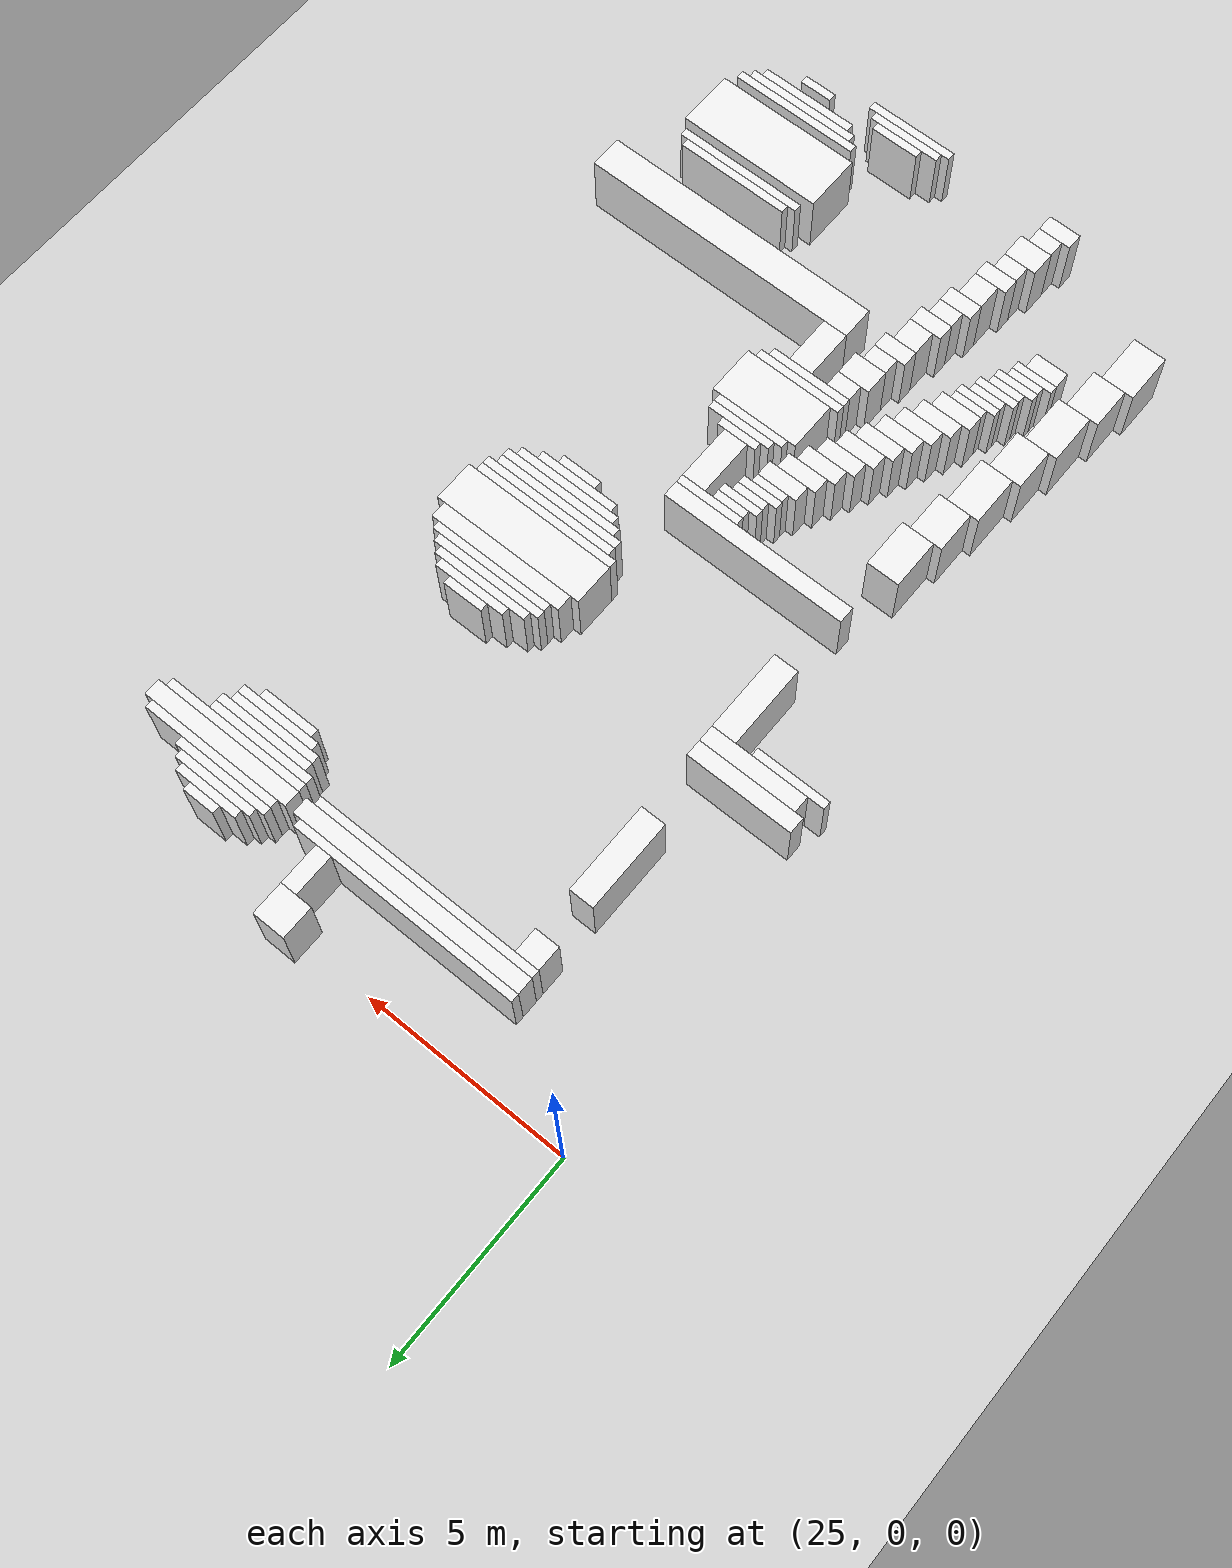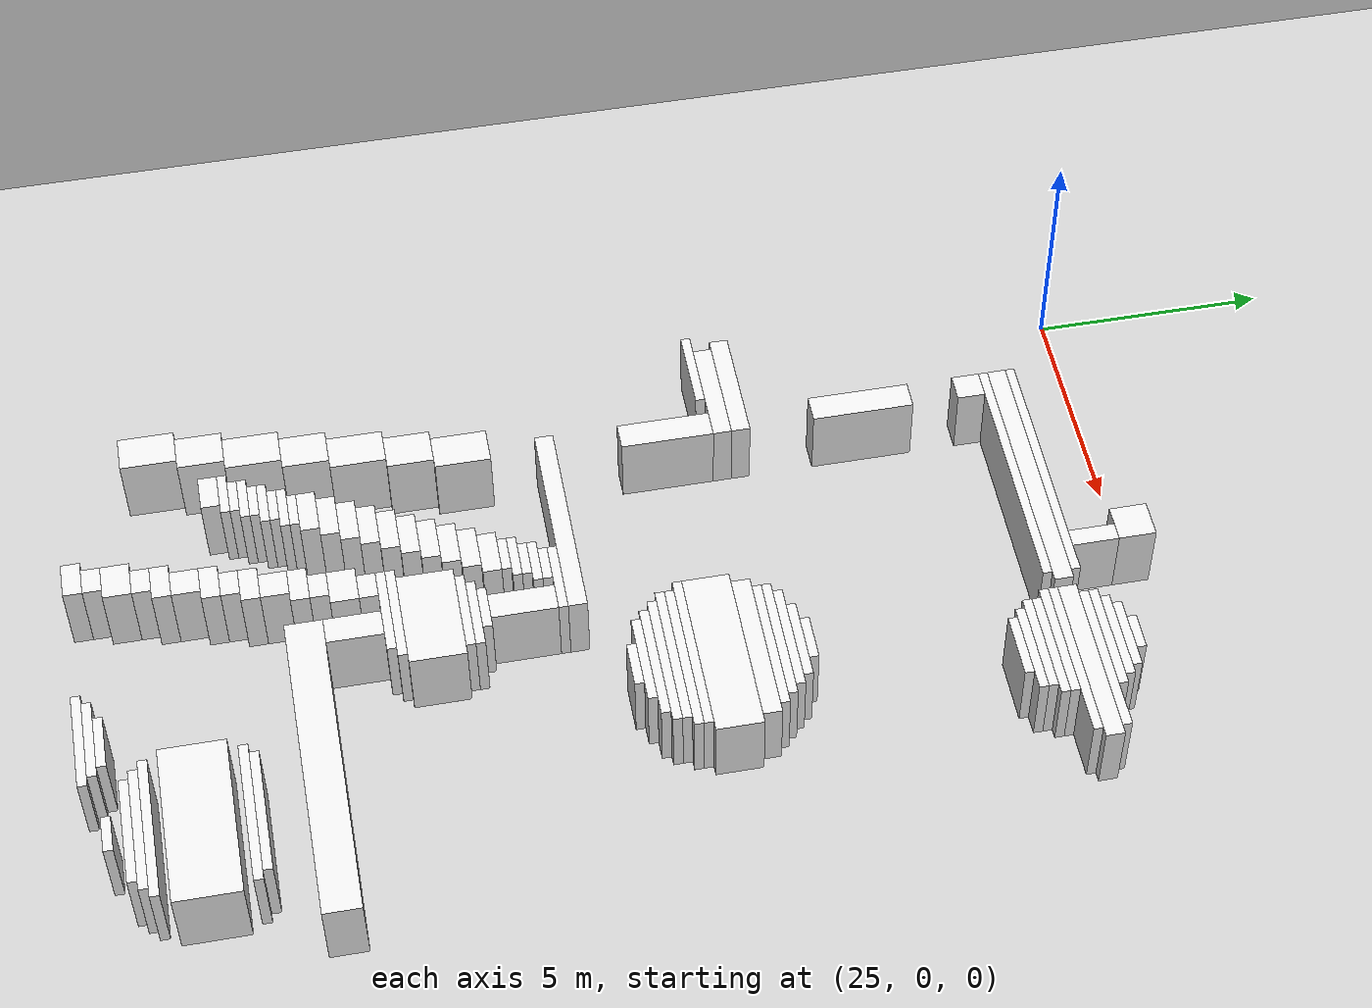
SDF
<sdf version="1.7">
 <world name="default">
  <model name="ground_plane">
   <static>1</static>
   <link name="link">
    <collision name="collision">
     <geometry><plane><normal>0 0 1</normal><size>120 120</size></plane></geometry>
    </collision>
    <visual name="visual">
     <geometry><plane><normal>0 0 1</normal><size>120 120</size></plane></geometry>
     <material>
      <script><uri>file://media/materials/scripts/gazebo.material</uri><name>Gazebo/Grey</name></script>
     </material>
    </visual>
   </link>
  </model>
  <model name="random_complex_03_model">
   <static>1</static>
   <link name="obs_1635">
    <pose>32.0000 0.0000 0.8000 0 0 0</pose>
    <collision name="obs_1635_col"><geometry><box><size>0.8000 0.8000 1.6000</size></box></geometry></collision>
    <visual name="obs_1635_vis">
     <geometry><box><size>0.8000 0.8000 1.6000</size></box></geometry>
     <material>
      <script><uri>file://media/materials/scripts/gazebo.material</uri><name>Gazebo/White</name></script>
     </material>
    </visual>
   </link>
   <link name="obs_1661">
    <pose>34.8000 -0.7000 0.8000 0 0 0</pose>
    <collision name="obs_1661_col"><geometry><box><size>0.8000 0.2000 1.6000</size></box></geometry></collision>
    <visual name="obs_1661_vis">
     <geometry><box><size>0.8000 0.2000 1.6000</size></box></geometry>
     <material>
      <script><uri>file://media/materials/scripts/gazebo.material</uri><name>Gazebo/White</name></script>
     </material>
    </visual>
   </link>
   <link name="obs_1671">
    <pose>34.8000 -0.9000 0.8000 0 0 0</pose>
    <collision name="obs_1671_col"><geometry><box><size>1.6000 0.2000 1.6000</size></box></geometry></collision>
    <visual name="obs_1671_vis">
     <geometry><box><size>1.6000 0.2000 1.6000</size></box></geometry>
     <material>
      <script><uri>file://media/materials/scripts/gazebo.material</uri><name>Gazebo/White</name></script>
     </material>
    </visual>
   </link>
   <link name="obs_1680">
    <pose>34.8000 -1.1000 0.8000 0 0 0</pose>
    <collision name="obs_1680_col"><geometry><box><size>2.0000 0.2000 1.6000</size></box></geometry></collision>
    <visual name="obs_1680_vis">
     <geometry><box><size>2.0000 0.2000 1.6000</size></box></geometry>
     <material>
      <script><uri>file://media/materials/scripts/gazebo.material</uri><name>Gazebo/White</name></script>
     </material>
    </visual>
   </link>
   <link name="obs_1682">
    <pose>32.2000 -0.9000 0.8000 0 0 0</pose>
    <collision name="obs_1682_col"><geometry><box><size>0.4000 1.0000 1.6000</size></box></geometry></collision>
    <visual name="obs_1682_vis">
     <geometry><box><size>0.4000 1.0000 1.6000</size></box></geometry>
     <material>
      <script><uri>file://media/materials/scripts/gazebo.material</uri><name>Gazebo/White</name></script>
     </material>
    </visual>
   </link>
   <link name="obs_1691">
    <pose>34.8000 -1.3000 0.8000 0 0 0</pose>
    <collision name="obs_1691_col"><geometry><box><size>2.4000 0.2000 1.6000</size></box></geometry></collision>
    <visual name="obs_1691_vis">
     <geometry><box><size>2.4000 0.2000 1.6000</size></box></geometry>
     <material>
      <script><uri>file://media/materials/scripts/gazebo.material</uri><name>Gazebo/White</name></script>
     </material>
    </visual>
   </link>
   <link name="obs_1702">
    <pose>30.2000 -1.5000 0.8000 0 0 0</pose>
    <collision name="obs_1702_col"><geometry><box><size>5.6000 0.2000 1.6000</size></box></geometry></collision>
    <visual name="obs_1702_vis">
     <geometry><box><size>5.6000 0.2000 1.6000</size></box></geometry>
     <material>
      <script><uri>file://media/materials/scripts/gazebo.material</uri><name>Gazebo/White</name></script>
     </material>
    </visual>
   </link>
   <link name="obs_1703">
    <pose>35.3000 -1.5000 0.8000 0 0 0</pose>
    <collision name="obs_1703_col"><geometry><box><size>3.4000 0.2000 1.6000</size></box></geometry></collision>
    <visual name="obs_1703_vis">
     <geometry><box><size>3.4000 0.2000 1.6000</size></box></geometry>
     <material>
      <script><uri>file://media/materials/scripts/gazebo.material</uri><name>Gazebo/White</name></script>
     </material>
    </visual>
   </link>
   <link name="obs_1713">
    <pose>30.3000 -1.8000 0.8000 0 0 0</pose>
    <collision name="obs_1713_col"><geometry><box><size>5.8000 0.4000 1.6000</size></box></geometry></collision>
    <visual name="obs_1713_vis">
     <geometry><box><size>5.8000 0.4000 1.6000</size></box></geometry>
     <material>
      <script><uri>file://media/materials/scripts/gazebo.material</uri><name>Gazebo/White</name></script>
     </material>
    </visual>
   </link>
   <link name="obs_1714">
    <pose>35.3000 -1.8000 0.8000 0 0 0</pose>
    <collision name="obs_1714_col"><geometry><box><size>3.8000 0.4000 1.6000</size></box></geometry></collision>
    <visual name="obs_1714_vis">
     <geometry><box><size>3.8000 0.4000 1.6000</size></box></geometry>
     <material>
      <script><uri>file://media/materials/scripts/gazebo.material</uri><name>Gazebo/White</name></script>
     </material>
    </visual>
   </link>
   <link name="obs_1728">
    <pose>30.2000 -2.1000 0.8000 0 0 0</pose>
    <collision name="obs_1728_col"><geometry><box><size>5.6000 0.2000 1.6000</size></box></geometry></collision>
    <visual name="obs_1728_vis">
     <geometry><box><size>5.6000 0.2000 1.6000</size></box></geometry>
     <material>
      <script><uri>file://media/materials/scripts/gazebo.material</uri><name>Gazebo/White</name></script>
     </material>
    </visual>
   </link>
   <link name="obs_1729">
    <pose>35.2000 -2.1000 0.8000 0 0 0</pose>
    <collision name="obs_1729_col"><geometry><box><size>3.6000 0.2000 1.6000</size></box></geometry></collision>
    <visual name="obs_1729_vis">
     <geometry><box><size>3.6000 0.2000 1.6000</size></box></geometry>
     <material>
      <script><uri>file://media/materials/scripts/gazebo.material</uri><name>Gazebo/White</name></script>
     </material>
    </visual>
   </link>
   <link name="obs_1738">
    <pose>34.7000 -2.3000 0.8000 0 0 0</pose>
    <collision name="obs_1738_col"><geometry><box><size>2.6000 0.2000 1.6000</size></box></geometry></collision>
    <visual name="obs_1738_vis">
     <geometry><box><size>2.6000 0.2000 1.6000</size></box></geometry>
     <material>
      <script><uri>file://media/materials/scripts/gazebo.material</uri><name>Gazebo/White</name></script>
     </material>
    </visual>
   </link>
   <link name="obs_1748">
    <pose>34.8000 -2.5000 0.8000 0 0 0</pose>
    <collision name="obs_1748_col"><geometry><box><size>2.4000 0.2000 1.6000</size></box></geometry></collision>
    <visual name="obs_1748_vis">
     <geometry><box><size>2.4000 0.2000 1.6000</size></box></geometry>
     <material>
      <script><uri>file://media/materials/scripts/gazebo.material</uri><name>Gazebo/White</name></script>
     </material>
    </visual>
   </link>
   <link name="obs_1750">
    <pose>27.7000 -2.5000 0.8000 0 0 0</pose>
    <collision name="obs_1750_col"><geometry><box><size>0.6000 0.6000 1.6000</size></box></geometry></collision>
    <visual name="obs_1750_vis">
     <geometry><box><size>0.6000 0.6000 1.6000</size></box></geometry>
     <material>
      <script><uri>file://media/materials/scripts/gazebo.material</uri><name>Gazebo/White</name></script>
     </material>
    </visual>
   </link>
   <link name="obs_1755">
    <pose>34.7000 -2.7000 0.8000 0 0 0</pose>
    <collision name="obs_1755_col"><geometry><box><size>2.2000 0.2000 1.6000</size></box></geometry></collision>
    <visual name="obs_1755_vis">
     <geometry><box><size>2.2000 0.2000 1.6000</size></box></geometry>
     <material>
      <script><uri>file://media/materials/scripts/gazebo.material</uri><name>Gazebo/White</name></script>
     </material>
    </visual>
   </link>
   <link name="obs_1762">
    <pose>34.8000 -2.9000 0.8000 0 0 0</pose>
    <collision name="obs_1762_col"><geometry><box><size>2.0000 0.2000 1.6000</size></box></geometry></collision>
    <visual name="obs_1762_vis">
     <geometry><box><size>2.0000 0.2000 1.6000</size></box></geometry>
     <material>
      <script><uri>file://media/materials/scripts/gazebo.material</uri><name>Gazebo/White</name></script>
     </material>
    </visual>
   </link>
   <link name="obs_1772">
    <pose>34.7000 -3.1000 0.8000 0 0 0</pose>
    <collision name="obs_1772_col"><geometry><box><size>1.4000 0.2000 1.6000</size></box></geometry></collision>
    <visual name="obs_1772_vis">
     <geometry><box><size>1.4000 0.2000 1.6000</size></box></geometry>
     <material>
      <script><uri>file://media/materials/scripts/gazebo.material</uri><name>Gazebo/White</name></script>
     </material>
    </visual>
   </link>
   <link name="obs_1829">
    <pose>27.7000 -4.9000 0.8000 0 0 0</pose>
    <collision name="obs_1829_col"><geometry><box><size>0.6000 2.2000 1.6000</size></box></geometry></collision>
    <visual name="obs_1829_vis">
     <geometry><box><size>0.6000 2.2000 1.6000</size></box></geometry>
     <material>
      <script><uri>file://media/materials/scripts/gazebo.material</uri><name>Gazebo/White</name></script>
     </material>
    </visual>
   </link>
   <link name="obs_1868">
    <pose>33.7000 -7.3000 0.8000 0 0 0</pose>
    <collision name="obs_1868_col"><geometry><box><size>1.0000 0.2000 1.6000</size></box></geometry></collision>
    <visual name="obs_1868_vis">
     <geometry><box><size>1.0000 0.2000 1.6000</size></box></geometry>
     <material>
      <script><uri>file://media/materials/scripts/gazebo.material</uri><name>Gazebo/White</name></script>
     </material>
    </visual>
   </link>
   <link name="obs_1875">
    <pose>33.7000 -7.5000 0.8000 0 0 0</pose>
    <collision name="obs_1875_col"><geometry><box><size>1.8000 0.2000 1.6000</size></box></geometry></collision>
    <visual name="obs_1875_vis">
     <geometry><box><size>1.8000 0.2000 1.6000</size></box></geometry>
     <material>
      <script><uri>file://media/materials/scripts/gazebo.material</uri><name>Gazebo/White</name></script>
     </material>
    </visual>
   </link>
   <link name="obs_1877">
    <pose>26.7000 -7.6000 0.8000 0 0 0</pose>
    <collision name="obs_1877_col"><geometry><box><size>2.6000 0.4000 1.6000</size></box></geometry></collision>
    <visual name="obs_1877_vis">
     <geometry><box><size>2.6000 0.4000 1.6000</size></box></geometry>
     <material>
      <script><uri>file://media/materials/scripts/gazebo.material</uri><name>Gazebo/White</name></script>
     </material>
    </visual>
   </link>
   <link name="obs_1882">
    <pose>33.6000 -7.7000 0.8000 0 0 0</pose>
    <collision name="obs_1882_col"><geometry><box><size>2.4000 0.2000 1.6000</size></box></geometry></collision>
    <visual name="obs_1882_vis">
     <geometry><box><size>2.4000 0.2000 1.6000</size></box></geometry>
     <material>
      <script><uri>file://media/materials/scripts/gazebo.material</uri><name>Gazebo/White</name></script>
     </material>
    </visual>
   </link>
   <link name="obs_1888">
    <pose>33.6000 -7.9000 0.8000 0 0 0</pose>
    <collision name="obs_1888_col"><geometry><box><size>2.8000 0.2000 1.6000</size></box></geometry></collision>
    <visual name="obs_1888_vis">
     <geometry><box><size>2.8000 0.2000 1.6000</size></box></geometry>
     <material>
      <script><uri>file://media/materials/scripts/gazebo.material</uri><name>Gazebo/White</name></script>
     </material>
    </visual>
   </link>
   <link name="obs_1892">
    <pose>26.8000 -8.0000 0.8000 0 0 0</pose>
    <collision name="obs_1892_col"><geometry><box><size>2.4000 0.4000 1.6000</size></box></geometry></collision>
    <visual name="obs_1892_vis">
     <geometry><box><size>2.4000 0.4000 1.6000</size></box></geometry>
     <material>
      <script><uri>file://media/materials/scripts/gazebo.material</uri><name>Gazebo/White</name></script>
     </material>
    </visual>
   </link>
   <link name="obs_1894">
    <pose>33.7000 -8.1000 0.8000 0 0 0</pose>
    <collision name="obs_1894_col"><geometry><box><size>3.0000 0.2000 1.6000</size></box></geometry></collision>
    <visual name="obs_1894_vis">
     <geometry><box><size>3.0000 0.2000 1.6000</size></box></geometry>
     <material>
      <script><uri>file://media/materials/scripts/gazebo.material</uri><name>Gazebo/White</name></script>
     </material>
    </visual>
   </link>
   <link name="obs_1900">
    <pose>26.1000 -8.3000 0.8000 0 0 0</pose>
    <collision name="obs_1900_col"><geometry><box><size>1.8000 0.2000 1.6000</size></box></geometry></collision>
    <visual name="obs_1900_vis">
     <geometry><box><size>1.8000 0.2000 1.6000</size></box></geometry>
     <material>
      <script><uri>file://media/materials/scripts/gazebo.material</uri><name>Gazebo/White</name></script>
     </material>
    </visual>
   </link>
   <link name="obs_1902">
    <pose>33.7000 -8.4000 0.8000 0 0 0</pose>
    <collision name="obs_1902_col"><geometry><box><size>3.4000 0.4000 1.6000</size></box></geometry></collision>
    <visual name="obs_1902_vis">
     <geometry><box><size>3.4000 0.4000 1.6000</size></box></geometry>
     <material>
      <script><uri>file://media/materials/scripts/gazebo.material</uri><name>Gazebo/White</name></script>
     </material>
    </visual>
   </link>
   <link name="obs_1937">
    <pose>33.7000 -9.1000 0.8000 0 0 0</pose>
    <collision name="obs_1937_col"><geometry><box><size>3.8000 1.0000 1.6000</size></box></geometry></collision>
    <visual name="obs_1937_vis">
     <geometry><box><size>3.8000 1.0000 1.6000</size></box></geometry>
     <material>
      <script><uri>file://media/materials/scripts/gazebo.material</uri><name>Gazebo/White</name></script>
     </material>
    </visual>
   </link>
   <link name="obs_1951">
    <pose>33.6000 -9.7000 0.8000 0 0 0</pose>
    <collision name="obs_1951_col"><geometry><box><size>3.6000 0.2000 1.6000</size></box></geometry></collision>
    <visual name="obs_1951_vis">
     <geometry><box><size>3.6000 0.2000 1.6000</size></box></geometry>
     <material>
      <script><uri>file://media/materials/scripts/gazebo.material</uri><name>Gazebo/White</name></script>
     </material>
    </visual>
   </link>
   <link name="obs_1959">
    <pose>33.7000 -9.9000 0.8000 0 0 0</pose>
    <collision name="obs_1959_col"><geometry><box><size>3.4000 0.2000 1.6000</size></box></geometry></collision>
    <visual name="obs_1959_vis">
     <geometry><box><size>3.4000 0.2000 1.6000</size></box></geometry>
     <material>
      <script><uri>file://media/materials/scripts/gazebo.material</uri><name>Gazebo/White</name></script>
     </material>
    </visual>
   </link>
   <link name="obs_1961">
    <pose>27.7000 -9.2000 0.8000 0 0 0</pose>
    <collision name="obs_1961_col"><geometry><box><size>0.6000 2.0000 1.6000</size></box></geometry></collision>
    <visual name="obs_1961_vis">
     <geometry><box><size>0.6000 2.0000 1.6000</size></box></geometry>
     <material>
      <script><uri>file://media/materials/scripts/gazebo.material</uri><name>Gazebo/White</name></script>
     </material>
    </visual>
   </link>
   <link name="obs_1970">
    <pose>33.6000 -10.1000 0.8000 0 0 0</pose>
    <collision name="obs_1970_col"><geometry><box><size>3.2000 0.2000 1.6000</size></box></geometry></collision>
    <visual name="obs_1970_vis">
     <geometry><box><size>3.2000 0.2000 1.6000</size></box></geometry>
     <material>
      <script><uri>file://media/materials/scripts/gazebo.material</uri><name>Gazebo/White</name></script>
     </material>
    </visual>
   </link>
   <link name="obs_1972">
    <pose>33.7000 -10.3000 0.8000 0 0 0</pose>
    <collision name="obs_1972_col"><geometry><box><size>3.0000 0.2000 1.6000</size></box></geometry></collision>
    <visual name="obs_1972_vis">
     <geometry><box><size>3.0000 0.2000 1.6000</size></box></geometry>
     <material>
      <script><uri>file://media/materials/scripts/gazebo.material</uri><name>Gazebo/White</name></script>
     </material>
    </visual>
   </link>
   <link name="obs_1975">
    <pose>33.7000 -10.5000 0.8000 0 0 0</pose>
    <collision name="obs_1975_col"><geometry><box><size>2.6000 0.2000 1.6000</size></box></geometry></collision>
    <visual name="obs_1975_vis">
     <geometry><box><size>2.6000 0.2000 1.6000</size></box></geometry>
     <material>
      <script><uri>file://media/materials/scripts/gazebo.material</uri><name>Gazebo/White</name></script>
     </material>
    </visual>
   </link>
   <link name="obs_1978">
    <pose>33.6000 -10.7000 0.8000 0 0 0</pose>
    <collision name="obs_1978_col"><geometry><box><size>2.0000 0.2000 1.6000</size></box></geometry></collision>
    <visual name="obs_1978_vis">
     <geometry><box><size>2.0000 0.2000 1.6000</size></box></geometry>
     <material>
      <script><uri>file://media/materials/scripts/gazebo.material</uri><name>Gazebo/White</name></script>
     </material>
    </visual>
   </link>
   <link name="obs_1982">
    <pose>33.7000 -10.9000 0.8000 0 0 0</pose>
    <collision name="obs_1982_col"><geometry><box><size>1.0000 0.2000 1.6000</size></box></geometry></collision>
    <visual name="obs_1982_vis">
     <geometry><box><size>1.0000 0.2000 1.6000</size></box></geometry>
     <material>
      <script><uri>file://media/materials/scripts/gazebo.material</uri><name>Gazebo/White</name></script>
     </material>
    </visual>
   </link>
   <link name="obs_1999">
    <pose>29.7000 -11.8000 0.8000 0 0 0</pose>
    <collision name="obs_1999_col"><geometry><box><size>4.6000 0.4000 1.6000</size></box></geometry></collision>
    <visual name="obs_1999_vis">
     <geometry><box><size>4.6000 0.4000 1.6000</size></box></geometry>
     <material>
      <script><uri>file://media/materials/scripts/gazebo.material</uri><name>Gazebo/White</name></script>
     </material>
    </visual>
   </link>
   <link name="obs_2014">
    <pose>31.2000 -12.1000 0.8000 0 0 0</pose>
    <collision name="obs_2014_col"><geometry><box><size>1.6000 0.2000 1.6000</size></box></geometry></collision>
    <visual name="obs_2014_vis">
     <geometry><box><size>1.6000 0.2000 1.6000</size></box></geometry>
     <material>
      <script><uri>file://media/materials/scripts/gazebo.material</uri><name>Gazebo/White</name></script>
     </material>
    </visual>
   </link>
   <link name="obs_2023">
    <pose>30.8000 -12.3000 0.8000 0 0 0</pose>
    <collision name="obs_2023_col"><geometry><box><size>0.8000 0.2000 1.6000</size></box></geometry></collision>
    <visual name="obs_2023_vis">
     <geometry><box><size>0.8000 0.2000 1.6000</size></box></geometry>
     <material>
      <script><uri>file://media/materials/scripts/gazebo.material</uri><name>Gazebo/White</name></script>
     </material>
    </visual>
   </link>
   <link name="obs_2030">
    <pose>30.7000 -12.5000 0.8000 0 0 0</pose>
    <collision name="obs_2030_col"><geometry><box><size>1.0000 0.2000 1.6000</size></box></geometry></collision>
    <visual name="obs_2030_vis">
     <geometry><box><size>1.0000 0.2000 1.6000</size></box></geometry>
     <material>
      <script><uri>file://media/materials/scripts/gazebo.material</uri><name>Gazebo/White</name></script>
     </material>
    </visual>
   </link>
   <link name="obs_2042">
    <pose>30.6000 -12.7000 0.8000 0 0 0</pose>
    <collision name="obs_2042_col"><geometry><box><size>0.8000 0.2000 1.6000</size></box></geometry></collision>
    <visual name="obs_2042_vis">
     <geometry><box><size>0.8000 0.2000 1.6000</size></box></geometry>
     <material>
      <script><uri>file://media/materials/scripts/gazebo.material</uri><name>Gazebo/White</name></script>
     </material>
    </visual>
   </link>
   <link name="obs_2050">
    <pose>30.5000 -12.9000 0.8000 0 0 0</pose>
    <collision name="obs_2050_col"><geometry><box><size>1.0000 0.2000 1.6000</size></box></geometry></collision>
    <visual name="obs_2050_vis">
     <geometry><box><size>1.0000 0.2000 1.6000</size></box></geometry>
     <material>
      <script><uri>file://media/materials/scripts/gazebo.material</uri><name>Gazebo/White</name></script>
     </material>
    </visual>
   </link>
   <link name="obs_2057">
    <pose>30.4000 -13.1000 0.8000 0 0 0</pose>
    <collision name="obs_2057_col"><geometry><box><size>0.8000 0.2000 1.6000</size></box></geometry></collision>
    <visual name="obs_2057_vis">
     <geometry><box><size>0.8000 0.2000 1.6000</size></box></geometry>
     <material>
      <script><uri>file://media/materials/scripts/gazebo.material</uri><name>Gazebo/White</name></script>
     </material>
    </visual>
   </link>
   <link name="obs_2063">
    <pose>31.7000 -12.9000 0.8000 0 0 0</pose>
    <collision name="obs_2063_col"><geometry><box><size>0.6000 1.4000 1.6000</size></box></geometry></collision>
    <visual name="obs_2063_vis">
     <geometry><box><size>0.6000 1.4000 1.6000</size></box></geometry>
     <material>
      <script><uri>file://media/materials/scripts/gazebo.material</uri><name>Gazebo/White</name></script>
     </material>
    </visual>
   </link>
   <link name="obs_2065">
    <pose>30.3000 -13.4000 0.8000 0 0 0</pose>
    <collision name="obs_2065_col"><geometry><box><size>1.0000 0.4000 1.6000</size></box></geometry></collision>
    <visual name="obs_2065_vis">
     <geometry><box><size>1.0000 0.4000 1.6000</size></box></geometry>
     <material>
      <script><uri>file://media/materials/scripts/gazebo.material</uri><name>Gazebo/White</name></script>
     </material>
    </visual>
   </link>
   <link name="obs_2076">
    <pose>31.7000 -13.7000 0.8000 0 0 0</pose>
    <collision name="obs_2076_col"><geometry><box><size>1.0000 0.2000 1.6000</size></box></geometry></collision>
    <visual name="obs_2076_vis">
     <geometry><box><size>1.0000 0.2000 1.6000</size></box></geometry>
     <material>
      <script><uri>file://media/materials/scripts/gazebo.material</uri><name>Gazebo/White</name></script>
     </material>
    </visual>
   </link>
   <link name="obs_2080">
    <pose>30.1000 -13.8000 0.8000 0 0 0</pose>
    <collision name="obs_2080_col"><geometry><box><size>1.0000 0.4000 1.6000</size></box></geometry></collision>
    <visual name="obs_2080_vis">
     <geometry><box><size>1.0000 0.4000 1.6000</size></box></geometry>
     <material>
      <script><uri>file://media/materials/scripts/gazebo.material</uri><name>Gazebo/White</name></script>
     </material>
    </visual>
   </link>
   <link name="obs_2086">
    <pose>31.8000 -13.9000 0.8000 0 0 0</pose>
    <collision name="obs_2086_col"><geometry><box><size>1.6000 0.2000 1.6000</size></box></geometry></collision>
    <visual name="obs_2086_vis">
     <geometry><box><size>1.6000 0.2000 1.6000</size></box></geometry>
     <material>
      <script><uri>file://media/materials/scripts/gazebo.material</uri><name>Gazebo/White</name></script>
     </material>
    </visual>
   </link>
   <link name="obs_2087">
    <pose>27.4000 -13.6000 0.8000 0 0 0</pose>
    <collision name="obs_2087_col"><geometry><box><size>0.8000 1.2000 1.6000</size></box></geometry></collision>
    <visual name="obs_2087_vis">
     <geometry><box><size>0.8000 1.2000 1.6000</size></box></geometry>
     <material>
      <script><uri>file://media/materials/scripts/gazebo.material</uri><name>Gazebo/White</name></script>
     </material>
    </visual>
   </link>
   <link name="obs_2095">
    <pose>31.7000 -14.1000 0.8000 0 0 0</pose>
    <collision name="obs_2095_col"><geometry><box><size>1.8000 0.2000 1.6000</size></box></geometry></collision>
    <visual name="obs_2095_vis">
     <geometry><box><size>1.8000 0.2000 1.6000</size></box></geometry>
     <material>
      <script><uri>file://media/materials/scripts/gazebo.material</uri><name>Gazebo/White</name></script>
     </material>
    </visual>
   </link>
   <link name="obs_2097">
    <pose>29.9000 -14.2000 0.8000 0 0 0</pose>
    <collision name="obs_2097_col"><geometry><box><size>1.0000 0.4000 1.6000</size></box></geometry></collision>
    <visual name="obs_2097_vis">
     <geometry><box><size>1.0000 0.4000 1.6000</size></box></geometry>
     <material>
      <script><uri>file://media/materials/scripts/gazebo.material</uri><name>Gazebo/White</name></script>
     </material>
    </visual>
   </link>
   <link name="obs_2112">
    <pose>29.7000 -14.6000 0.8000 0 0 0</pose>
    <collision name="obs_2112_col"><geometry><box><size>1.0000 0.4000 1.6000</size></box></geometry></collision>
    <visual name="obs_2112_vis">
     <geometry><box><size>1.0000 0.4000 1.6000</size></box></geometry>
     <material>
      <script><uri>file://media/materials/scripts/gazebo.material</uri><name>Gazebo/White</name></script>
     </material>
    </visual>
   </link>
   <link name="obs_2126">
    <pose>27.2000 -14.7000 0.8000 0 0 0</pose>
    <collision name="obs_2126_col"><geometry><box><size>0.8000 1.0000 1.6000</size></box></geometry></collision>
    <visual name="obs_2126_vis">
     <geometry><box><size>0.8000 1.0000 1.6000</size></box></geometry>
     <material>
      <script><uri>file://media/materials/scripts/gazebo.material</uri><name>Gazebo/White</name></script>
     </material>
    </visual>
   </link>
   <link name="obs_2127">
    <pose>29.5000 -15.0000 0.8000 0 0 0</pose>
    <collision name="obs_2127_col"><geometry><box><size>1.0000 0.4000 1.6000</size></box></geometry></collision>
    <visual name="obs_2127_vis">
     <geometry><box><size>1.0000 0.4000 1.6000</size></box></geometry>
     <material>
      <script><uri>file://media/materials/scripts/gazebo.material</uri><name>Gazebo/White</name></script>
     </material>
    </visual>
   </link>
   <link name="obs_2134">
    <pose>31.7000 -14.8000 0.8000 0 0 0</pose>
    <collision name="obs_2134_col"><geometry><box><size>2.2000 1.2000 1.6000</size></box></geometry></collision>
    <visual name="obs_2134_vis">
     <geometry><box><size>2.2000 1.2000 1.6000</size></box></geometry>
     <material>
      <script><uri>file://media/materials/scripts/gazebo.material</uri><name>Gazebo/White</name></script>
     </material>
    </visual>
   </link>
   <link name="obs_2145">
    <pose>29.3000 -15.4000 0.8000 0 0 0</pose>
    <collision name="obs_2145_col"><geometry><box><size>1.0000 0.4000 1.6000</size></box></geometry></collision>
    <visual name="obs_2145_vis">
     <geometry><box><size>1.0000 0.4000 1.6000</size></box></geometry>
     <material>
      <script><uri>file://media/materials/scripts/gazebo.material</uri><name>Gazebo/White</name></script>
     </material>
    </visual>
   </link>
   <link name="obs_2151">
    <pose>31.5000 -15.5000 0.8000 0 0 0</pose>
    <collision name="obs_2151_col"><geometry><box><size>2.2000 0.2000 1.6000</size></box></geometry></collision>
    <visual name="obs_2151_vis">
     <geometry><box><size>2.2000 0.2000 1.6000</size></box></geometry>
     <material>
      <script><uri>file://media/materials/scripts/gazebo.material</uri><name>Gazebo/White</name></script>
     </material>
    </visual>
   </link>
   <link name="obs_2161">
    <pose>31.4000 -15.7000 0.8000 0 0 0</pose>
    <collision name="obs_2161_col"><geometry><box><size>2.0000 0.2000 1.6000</size></box></geometry></collision>
    <visual name="obs_2161_vis">
     <geometry><box><size>2.0000 0.2000 1.6000</size></box></geometry>
     <material>
      <script><uri>file://media/materials/scripts/gazebo.material</uri><name>Gazebo/White</name></script>
     </material>
    </visual>
   </link>
   <link name="obs_2166">
    <pose>29.1000 -15.8000 0.8000 0 0 0</pose>
    <collision name="obs_2166_col"><geometry><box><size>1.0000 0.4000 1.6000</size></box></geometry></collision>
    <visual name="obs_2166_vis">
     <geometry><box><size>1.0000 0.4000 1.6000</size></box></geometry>
     <material>
      <script><uri>file://media/materials/scripts/gazebo.material</uri><name>Gazebo/White</name></script>
     </material>
    </visual>
   </link>
   <link name="obs_2174">
    <pose>30.7000 -16.0000 0.8000 0 0 0</pose>
    <collision name="obs_2174_col"><geometry><box><size>0.6000 0.4000 1.6000</size></box></geometry></collision>
    <visual name="obs_2174_vis">
     <geometry><box><size>0.6000 0.4000 1.6000</size></box></geometry>
     <material>
      <script><uri>file://media/materials/scripts/gazebo.material</uri><name>Gazebo/White</name></script>
     </material>
    </visual>
   </link>
   <link name="obs_2183">
    <pose>27.0000 -15.8000 0.8000 0 0 0</pose>
    <collision name="obs_2183_col"><geometry><box><size>0.8000 1.2000 1.6000</size></box></geometry></collision>
    <visual name="obs_2183_vis">
     <geometry><box><size>0.8000 1.2000 1.6000</size></box></geometry>
     <material>
      <script><uri>file://media/materials/scripts/gazebo.material</uri><name>Gazebo/White</name></script>
     </material>
    </visual>
   </link>
   <link name="obs_2186">
    <pose>28.9000 -16.2000 0.8000 0 0 0</pose>
    <collision name="obs_2186_col"><geometry><box><size>1.0000 0.4000 1.6000</size></box></geometry></collision>
    <visual name="obs_2186_vis">
     <geometry><box><size>1.0000 0.4000 1.6000</size></box></geometry>
     <material>
      <script><uri>file://media/materials/scripts/gazebo.material</uri><name>Gazebo/White</name></script>
     </material>
    </visual>
   </link>
   <link name="obs_2204">
    <pose>30.6000 -16.5000 0.8000 0 0 0</pose>
    <collision name="obs_2204_col"><geometry><box><size>0.8000 0.6000 1.6000</size></box></geometry></collision>
    <visual name="obs_2204_vis">
     <geometry><box><size>0.8000 0.6000 1.6000</size></box></geometry>
     <material>
      <script><uri>file://media/materials/scripts/gazebo.material</uri><name>Gazebo/White</name></script>
     </material>
    </visual>
   </link>
   <link name="obs_2205">
    <pose>28.7000 -16.6000 0.8000 0 0 0</pose>
    <collision name="obs_2205_col"><geometry><box><size>1.0000 0.4000 1.6000</size></box></geometry></collision>
    <visual name="obs_2205_vis">
     <geometry><box><size>1.0000 0.4000 1.6000</size></box></geometry>
     <material>
      <script><uri>file://media/materials/scripts/gazebo.material</uri><name>Gazebo/White</name></script>
     </material>
    </visual>
   </link>
   <link name="obs_2212">
    <pose>31.7000 -16.4000 0.8000 0 0 0</pose>
    <collision name="obs_2212_col"><geometry><box><size>0.6000 1.2000 1.6000</size></box></geometry></collision>
    <visual name="obs_2212_vis">
     <geometry><box><size>0.6000 1.2000 1.6000</size></box></geometry>
     <material>
      <script><uri>file://media/materials/scripts/gazebo.material</uri><name>Gazebo/White</name></script>
     </material>
    </visual>
   </link>
   <link name="obs_2225">
    <pose>28.5000 -17.0000 0.8000 0 0 0</pose>
    <collision name="obs_2225_col"><geometry><box><size>1.0000 0.4000 1.6000</size></box></geometry></collision>
    <visual name="obs_2225_vis">
     <geometry><box><size>1.0000 0.4000 1.6000</size></box></geometry>
     <material>
      <script><uri>file://media/materials/scripts/gazebo.material</uri><name>Gazebo/White</name></script>
     </material>
    </visual>
   </link>
   <link name="obs_2226">
    <pose>30.5000 -17.0000 0.8000 0 0 0</pose>
    <collision name="obs_2226_col"><geometry><box><size>0.6000 0.4000 1.6000</size></box></geometry></collision>
    <visual name="obs_2226_vis">
     <geometry><box><size>0.6000 0.4000 1.6000</size></box></geometry>
     <material>
      <script><uri>file://media/materials/scripts/gazebo.material</uri><name>Gazebo/White</name></script>
     </material>
    </visual>
   </link>
   <link name="obs_2233">
    <pose>26.8000 -16.9000 0.8000 0 0 0</pose>
    <collision name="obs_2233_col"><geometry><box><size>0.8000 1.0000 1.6000</size></box></geometry></collision>
    <visual name="obs_2233_vis">
     <geometry><box><size>0.8000 1.0000 1.6000</size></box></geometry>
     <material>
      <script><uri>file://media/materials/scripts/gazebo.material</uri><name>Gazebo/White</name></script>
     </material>
    </visual>
   </link>
   <link name="obs_2241">
    <pose>28.4000 -17.3000 0.8000 0 0 0</pose>
    <collision name="obs_2241_col"><geometry><box><size>0.8000 0.2000 1.6000</size></box></geometry></collision>
    <visual name="obs_2241_vis">
     <geometry><box><size>0.8000 0.2000 1.6000</size></box></geometry>
     <material>
      <script><uri>file://media/materials/scripts/gazebo.material</uri><name>Gazebo/White</name></script>
     </material>
    </visual>
   </link>
   <link name="obs_2244">
    <pose>30.4000 -17.4000 0.8000 0 0 0</pose>
    <collision name="obs_2244_col"><geometry><box><size>0.8000 0.4000 1.6000</size></box></geometry></collision>
    <visual name="obs_2244_vis">
     <geometry><box><size>0.8000 0.4000 1.6000</size></box></geometry>
     <material>
      <script><uri>file://media/materials/scripts/gazebo.material</uri><name>Gazebo/White</name></script>
     </material>
    </visual>
   </link>
   <link name="obs_2250">
    <pose>28.3000 -17.5000 0.8000 0 0 0</pose>
    <collision name="obs_2250_col"><geometry><box><size>1.0000 0.2000 1.6000</size></box></geometry></collision>
    <visual name="obs_2250_vis">
     <geometry><box><size>1.0000 0.2000 1.6000</size></box></geometry>
     <material>
      <script><uri>file://media/materials/scripts/gazebo.material</uri><name>Gazebo/White</name></script>
     </material>
    </visual>
   </link>
   <link name="obs_2253">
    <pose>34.9000 -17.4000 0.8000 0 0 0</pose>
    <collision name="obs_2253_col"><geometry><box><size>7.0000 0.8000 1.6000</size></box></geometry></collision>
    <visual name="obs_2253_vis">
     <geometry><box><size>7.0000 0.8000 1.6000</size></box></geometry>
     <material>
      <script><uri>file://media/materials/scripts/gazebo.material</uri><name>Gazebo/White</name></script>
     </material>
    </visual>
   </link>
   <link name="obs_2260">
    <pose>28.2000 -17.7000 0.8000 0 0 0</pose>
    <collision name="obs_2260_col"><geometry><box><size>0.8000 0.2000 1.6000</size></box></geometry></collision>
    <visual name="obs_2260_vis">
     <geometry><box><size>0.8000 0.2000 1.6000</size></box></geometry>
     <material>
      <script><uri>file://media/materials/scripts/gazebo.material</uri><name>Gazebo/White</name></script>
     </material>
    </visual>
   </link>
   <link name="obs_2266">
    <pose>28.1000 -17.9000 0.8000 0 0 0</pose>
    <collision name="obs_2266_col"><geometry><box><size>1.0000 0.2000 1.6000</size></box></geometry></collision>
    <visual name="obs_2266_vis">
     <geometry><box><size>1.0000 0.2000 1.6000</size></box></geometry>
     <material>
      <script><uri>file://media/materials/scripts/gazebo.material</uri><name>Gazebo/White</name></script>
     </material>
    </visual>
   </link>
   <link name="obs_2268">
    <pose>30.3000 -17.9000 0.8000 0 0 0</pose>
    <collision name="obs_2268_col"><geometry><box><size>0.6000 0.6000 1.6000</size></box></geometry></collision>
    <visual name="obs_2268_vis">
     <geometry><box><size>0.6000 0.6000 1.6000</size></box></geometry>
     <material>
      <script><uri>file://media/materials/scripts/gazebo.material</uri><name>Gazebo/White</name></script>
     </material>
    </visual>
   </link>
   <link name="obs_2272">
    <pose>28.0000 -18.1000 0.8000 0 0 0</pose>
    <collision name="obs_2272_col"><geometry><box><size>0.8000 0.2000 1.6000</size></box></geometry></collision>
    <visual name="obs_2272_vis">
     <geometry><box><size>0.8000 0.2000 1.6000</size></box></geometry>
     <material>
      <script><uri>file://media/materials/scripts/gazebo.material</uri><name>Gazebo/White</name></script>
     </material>
    </visual>
   </link>
   <link name="obs_2277">
    <pose>27.9000 -18.3000 0.8000 0 0 0</pose>
    <collision name="obs_2277_col"><geometry><box><size>1.0000 0.2000 1.6000</size></box></geometry></collision>
    <visual name="obs_2277_vis">
     <geometry><box><size>1.0000 0.2000 1.6000</size></box></geometry>
     <material>
      <script><uri>file://media/materials/scripts/gazebo.material</uri><name>Gazebo/White</name></script>
     </material>
    </visual>
   </link>
   <link name="obs_2280">
    <pose>26.6000 -18.0000 0.8000 0 0 0</pose>
    <collision name="obs_2280_col"><geometry><box><size>0.8000 1.2000 1.6000</size></box></geometry></collision>
    <visual name="obs_2280_vis">
     <geometry><box><size>0.8000 1.2000 1.6000</size></box></geometry>
     <material>
      <script><uri>file://media/materials/scripts/gazebo.material</uri><name>Gazebo/White</name></script>
     </material>
    </visual>
   </link>
   <link name="obs_2284">
    <pose>30.2000 -18.4000 0.8000 0 0 0</pose>
    <collision name="obs_2284_col"><geometry><box><size>0.8000 0.4000 1.6000</size></box></geometry></collision>
    <visual name="obs_2284_vis">
     <geometry><box><size>0.8000 0.4000 1.6000</size></box></geometry>
     <material>
      <script><uri>file://media/materials/scripts/gazebo.material</uri><name>Gazebo/White</name></script>
     </material>
    </visual>
   </link>
   <link name="obs_2286">
    <pose>27.8000 -18.5000 0.8000 0 0 0</pose>
    <collision name="obs_2286_col"><geometry><box><size>0.8000 0.2000 1.6000</size></box></geometry></collision>
    <visual name="obs_2286_vis">
     <geometry><box><size>0.8000 0.2000 1.6000</size></box></geometry>
     <material>
      <script><uri>file://media/materials/scripts/gazebo.material</uri><name>Gazebo/White</name></script>
     </material>
    </visual>
   </link>
   <link name="obs_2291">
    <pose>27.7000 -18.7000 0.8000 0 0 0</pose>
    <collision name="obs_2291_col"><geometry><box><size>1.0000 0.2000 1.6000</size></box></geometry></collision>
    <visual name="obs_2291_vis">
     <geometry><box><size>1.0000 0.2000 1.6000</size></box></geometry>
     <material>
      <script><uri>file://media/materials/scripts/gazebo.material</uri><name>Gazebo/White</name></script>
     </material>
    </visual>
   </link>
   <link name="obs_2292">
    <pose>35.8000 -18.7000 0.8000 0 0 0</pose>
    <collision name="obs_2292_col"><geometry><box><size>2.8000 0.2000 1.6000</size></box></geometry></collision>
    <visual name="obs_2292_vis">
     <geometry><box><size>2.8000 0.2000 1.6000</size></box></geometry>
     <material>
      <script><uri>file://media/materials/scripts/gazebo.material</uri><name>Gazebo/White</name></script>
     </material>
    </visual>
   </link>
   <link name="obs_2296">
    <pose>30.1000 -18.8000 0.8000 0 0 0</pose>
    <collision name="obs_2296_col"><geometry><box><size>0.6000 0.4000 1.6000</size></box></geometry></collision>
    <visual name="obs_2296_vis">
     <geometry><box><size>0.6000 0.4000 1.6000</size></box></geometry>
     <material>
      <script><uri>file://media/materials/scripts/gazebo.material</uri><name>Gazebo/White</name></script>
     </material>
    </visual>
   </link>
   <link name="obs_2298">
    <pose>35.8000 -18.9000 0.8000 0 0 0</pose>
    <collision name="obs_2298_col"><geometry><box><size>3.2000 0.2000 1.6000</size></box></geometry></collision>
    <visual name="obs_2298_vis">
     <geometry><box><size>3.2000 0.2000 1.6000</size></box></geometry>
     <material>
      <script><uri>file://media/materials/scripts/gazebo.material</uri><name>Gazebo/White</name></script>
     </material>
    </visual>
   </link>
   <link name="obs_2302">
    <pose>27.6000 -19.0000 0.8000 0 0 0</pose>
    <collision name="obs_2302_col"><geometry><box><size>0.8000 0.4000 1.6000</size></box></geometry></collision>
    <visual name="obs_2302_vis">
     <geometry><box><size>0.8000 0.4000 1.6000</size></box></geometry>
     <material>
      <script><uri>file://media/materials/scripts/gazebo.material</uri><name>Gazebo/White</name></script>
     </material>
    </visual>
   </link>
   <link name="obs_2308">
    <pose>30.0000 -19.2000 0.8000 0 0 0</pose>
    <collision name="obs_2308_col"><geometry><box><size>0.8000 0.4000 1.6000</size></box></geometry></collision>
    <visual name="obs_2308_vis">
     <geometry><box><size>0.8000 0.4000 1.6000</size></box></geometry>
     <material>
      <script><uri>file://media/materials/scripts/gazebo.material</uri><name>Gazebo/White</name></script>
     </material>
    </visual>
   </link>
   <link name="obs_2313">
    <pose>26.4000 -19.1000 0.8000 0 0 0</pose>
    <collision name="obs_2313_col"><geometry><box><size>0.8000 1.0000 1.6000</size></box></geometry></collision>
    <visual name="obs_2313_vis">
     <geometry><box><size>0.8000 1.0000 1.6000</size></box></geometry>
     <material>
      <script><uri>file://media/materials/scripts/gazebo.material</uri><name>Gazebo/White</name></script>
     </material>
    </visual>
   </link>
   <link name="obs_2322">
    <pose>29.9000 -19.7000 0.8000 0 0 0</pose>
    <collision name="obs_2322_col"><geometry><box><size>0.6000 0.6000 1.6000</size></box></geometry></collision>
    <visual name="obs_2322_vis">
     <geometry><box><size>0.6000 0.6000 1.6000</size></box></geometry>
     <material>
      <script><uri>file://media/materials/scripts/gazebo.material</uri><name>Gazebo/White</name></script>
     </material>
    </visual>
   </link>
   <link name="obs_2331">
    <pose>29.8000 -20.2000 0.8000 0 0 0</pose>
    <collision name="obs_2331_col"><geometry><box><size>0.8000 0.4000 1.6000</size></box></geometry></collision>
    <visual name="obs_2331_vis">
     <geometry><box><size>0.8000 0.4000 1.6000</size></box></geometry>
     <material>
      <script><uri>file://media/materials/scripts/gazebo.material</uri><name>Gazebo/White</name></script>
     </material>
    </visual>
   </link>
   <link name="obs_2336">
    <pose>35.8000 -19.9000 0.8000 0 0 0</pose>
    <collision name="obs_2336_col"><geometry><box><size>3.6000 1.4000 1.6000</size></box></geometry></collision>
    <visual name="obs_2336_vis">
     <geometry><box><size>3.6000 1.4000 1.6000</size></box></geometry>
     <material>
      <script><uri>file://media/materials/scripts/gazebo.material</uri><name>Gazebo/White</name></script>
     </material>
    </visual>
   </link>
   <link name="obs_2341">
    <pose>26.2000 -20.2000 0.8000 0 0 0</pose>
    <collision name="obs_2341_col"><geometry><box><size>0.8000 1.2000 1.6000</size></box></geometry></collision>
    <visual name="obs_2341_vis">
     <geometry><box><size>0.8000 1.2000 1.6000</size></box></geometry>
     <material>
      <script><uri>file://media/materials/scripts/gazebo.material</uri><name>Gazebo/White</name></script>
     </material>
    </visual>
   </link>
   <link name="obs_2342">
    <pose>29.7000 -20.6000 0.8000 0 0 0</pose>
    <collision name="obs_2342_col"><geometry><box><size>0.6000 0.4000 1.6000</size></box></geometry></collision>
    <visual name="obs_2342_vis">
     <geometry><box><size>0.6000 0.4000 1.6000</size></box></geometry>
     <material>
      <script><uri>file://media/materials/scripts/gazebo.material</uri><name>Gazebo/White</name></script>
     </material>
    </visual>
   </link>
   <link name="obs_2351">
    <pose>35.8000 -20.9000 0.8000 0 0 0</pose>
    <collision name="obs_2351_col"><geometry><box><size>3.2000 0.2000 1.6000</size></box></geometry></collision>
    <visual name="obs_2351_vis">
     <geometry><box><size>3.2000 0.2000 1.6000</size></box></geometry>
     <material>
      <script><uri>file://media/materials/scripts/gazebo.material</uri><name>Gazebo/White</name></script>
     </material>
    </visual>
   </link>
   <link name="obs_2356">
    <pose>35.8000 -21.1000 0.8000 0 0 0</pose>
    <collision name="obs_2356_col"><geometry><box><size>2.8000 0.2000 1.6000</size></box></geometry></collision>
    <visual name="obs_2356_vis">
     <geometry><box><size>2.8000 0.2000 1.6000</size></box></geometry>
     <material>
      <script><uri>file://media/materials/scripts/gazebo.material</uri><name>Gazebo/White</name></script>
     </material>
    </visual>
   </link>
   <link name="obs_2358">
    <pose>29.6000 -21.1000 0.8000 0 0 0</pose>
    <collision name="obs_2358_col"><geometry><box><size>0.8000 0.6000 1.6000</size></box></geometry></collision>
    <visual name="obs_2358_vis">
     <geometry><box><size>0.8000 0.6000 1.6000</size></box></geometry>
     <material>
      <script><uri>file://media/materials/scripts/gazebo.material</uri><name>Gazebo/White</name></script>
     </material>
    </visual>
   </link>
   <link name="obs_2361">
    <pose>35.8000 -21.3000 0.8000 0 0 0</pose>
    <collision name="obs_2361_col"><geometry><box><size>2.4000 0.2000 1.6000</size></box></geometry></collision>
    <visual name="obs_2361_vis">
     <geometry><box><size>2.4000 0.2000 1.6000</size></box></geometry>
     <material>
      <script><uri>file://media/materials/scripts/gazebo.material</uri><name>Gazebo/White</name></script>
     </material>
    </visual>
   </link>
   <link name="obs_2369">
    <pose>29.5000 -21.6000 0.8000 0 0 0</pose>
    <collision name="obs_2369_col"><geometry><box><size>0.6000 0.4000 1.6000</size></box></geometry></collision>
    <visual name="obs_2369_vis">
     <geometry><box><size>0.6000 0.4000 1.6000</size></box></geometry>
     <material>
      <script><uri>file://media/materials/scripts/gazebo.material</uri><name>Gazebo/White</name></script>
     </material>
    </visual>
   </link>
   <link name="obs_2371">
    <pose>33.6000 -21.7000 0.8000 0 0 0</pose>
    <collision name="obs_2371_col"><geometry><box><size>1.2000 0.2000 1.6000</size></box></geometry></collision>
    <visual name="obs_2371_vis">
     <geometry><box><size>1.2000 0.2000 1.6000</size></box></geometry>
     <material>
      <script><uri>file://media/materials/scripts/gazebo.material</uri><name>Gazebo/White</name></script>
     </material>
    </visual>
   </link>
   <link name="obs_2372">
    <pose>35.8000 -21.7000 0.8000 0 0 0</pose>
    <collision name="obs_2372_col"><geometry><box><size>0.8000 0.2000 1.6000</size></box></geometry></collision>
    <visual name="obs_2372_vis">
     <geometry><box><size>0.8000 0.2000 1.6000</size></box></geometry>
     <material>
      <script><uri>file://media/materials/scripts/gazebo.material</uri><name>Gazebo/White</name></script>
     </material>
    </visual>
   </link>
   <link name="obs_2378">
    <pose>33.5000 -21.9000 0.8000 0 0 0</pose>
    <collision name="obs_2378_col"><geometry><box><size>1.8000 0.2000 1.6000</size></box></geometry></collision>
    <visual name="obs_2378_vis">
     <geometry><box><size>1.8000 0.2000 1.6000</size></box></geometry>
     <material>
      <script><uri>file://media/materials/scripts/gazebo.material</uri><name>Gazebo/White</name></script>
     </material>
    </visual>
   </link>
   <link name="obs_2382">
    <pose>29.4000 -22.0000 0.8000 0 0 0</pose>
    <collision name="obs_2382_col"><geometry><box><size>0.8000 0.4000 1.6000</size></box></geometry></collision>
    <visual name="obs_2382_vis">
     <geometry><box><size>0.8000 0.4000 1.6000</size></box></geometry>
     <material>
      <script><uri>file://media/materials/scripts/gazebo.material</uri><name>Gazebo/White</name></script>
     </material>
    </visual>
   </link>
   <link name="obs_2385">
    <pose>33.5000 -22.1000 0.8000 0 0 0</pose>
    <collision name="obs_2385_col"><geometry><box><size>2.2000 0.2000 1.6000</size></box></geometry></collision>
    <visual name="obs_2385_vis">
     <geometry><box><size>2.2000 0.2000 1.6000</size></box></geometry>
     <material>
      <script><uri>file://media/materials/scripts/gazebo.material</uri><name>Gazebo/White</name></script>
     </material>
    </visual>
   </link>
  </model>
 </world>
</sdf>
